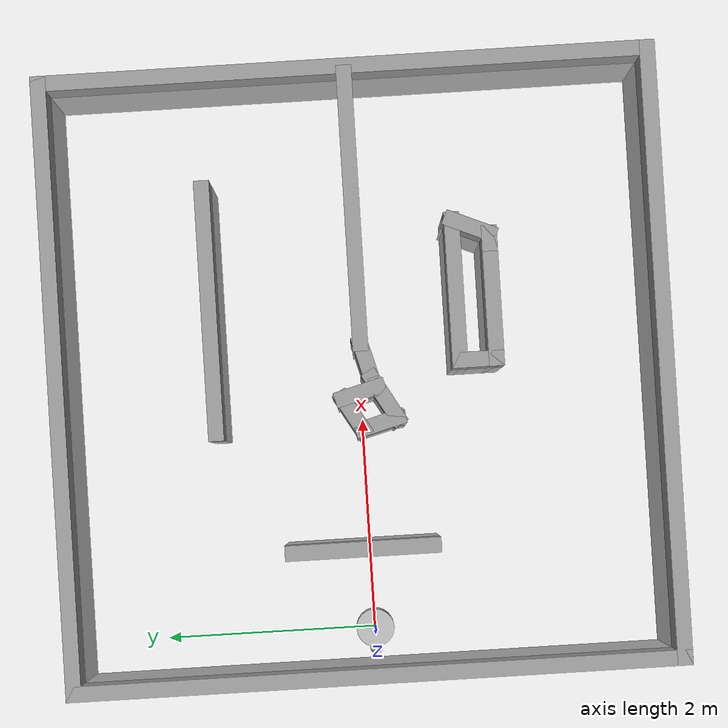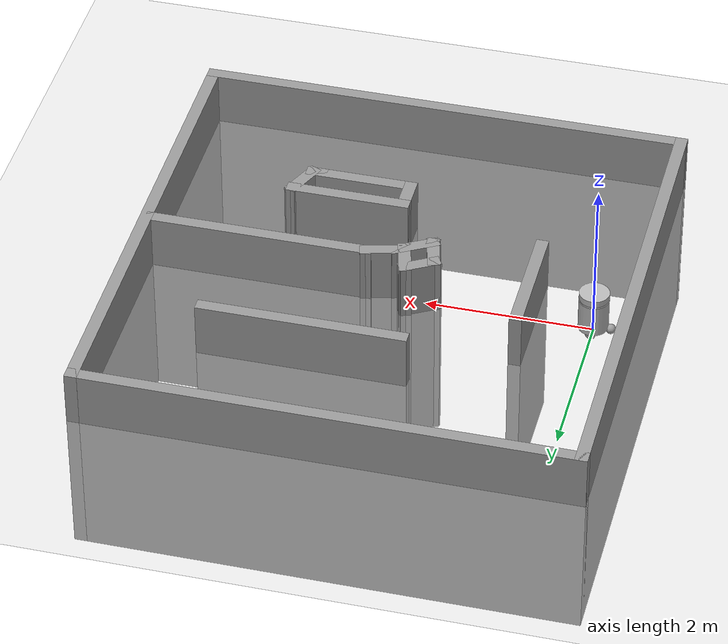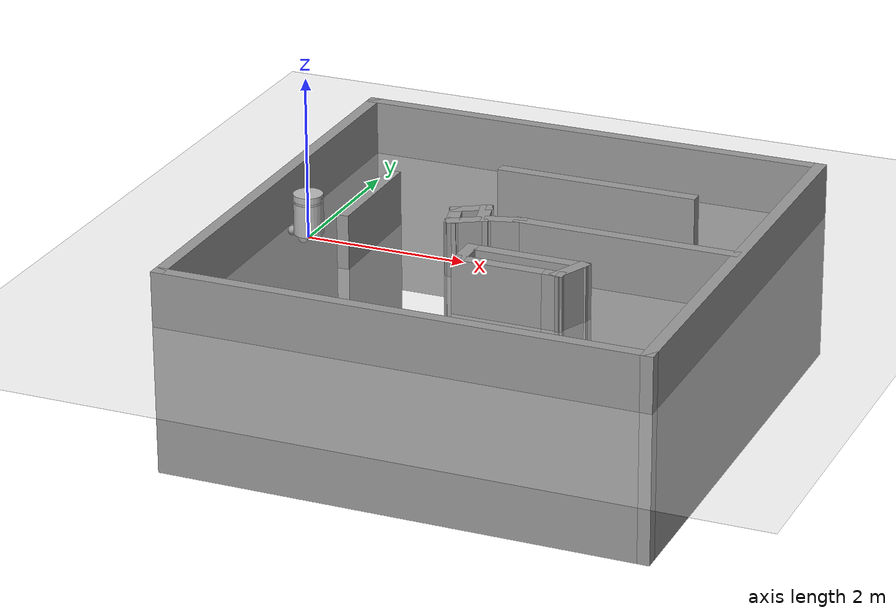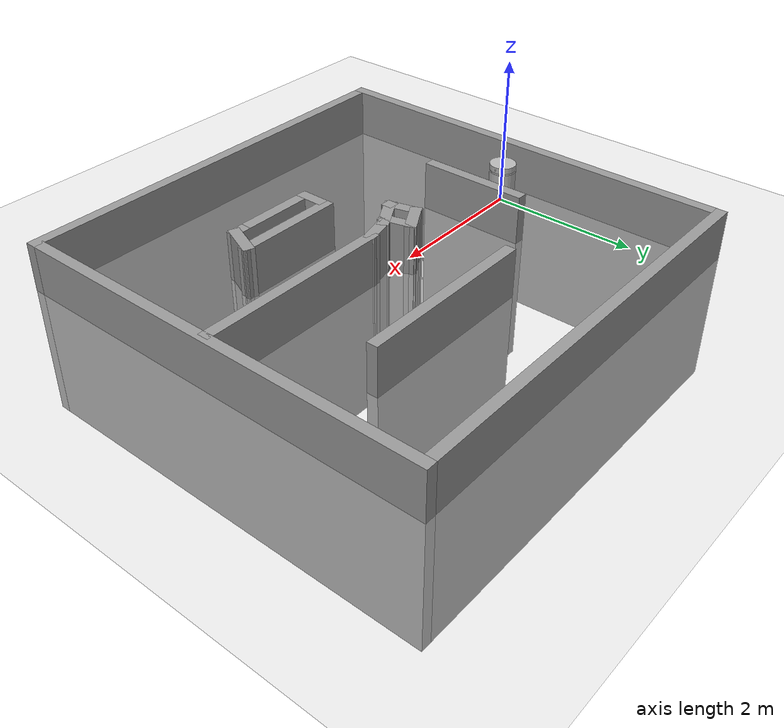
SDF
<sdf version="1.5">
 <world name="default">
  <light name="sun" type="directional">
   <pose>0 0 10 0 -0 0</pose>
   <diffuse>0.8 0.8 0.8 1</diffuse>
   <specular>0.2 0.2 0.2 1</specular>
   <attenuation>
    <range>1000</range>
    <constant>0.9</constant>
    <linear>0.01</linear>
    <quadratic>0.001</quadratic>
   </attenuation>
   <direction>-0.5 0.1 -0.9</direction>
  </light>
  <model name="ground_plane">
   <static>1</static>
   <link name="link">
    <collision name="collision">
     <geometry><plane><normal>0 0 1</normal><size>100 100</size></plane></geometry>
     <surface><friction><ode><mu>100</mu><mu2>50</mu2></ode></friction></surface>
    </collision>
    <visual name="visual">
     <cast_shadows>0</cast_shadows>
     <geometry><plane><normal>0 0 1</normal><size>100 100</size></plane></geometry>
     <material>
      <script><uri>file://media/materials/scripts/gazebo.material</uri><name>Gazebo/Grey</name></script>
     </material>
    </visual>
   </link>
  </model>
  <physics type="ode">
   <max_step_size>0.001</max_step_size>
   <real_time_factor>1</real_time_factor>
   <real_time_update_rate>1000</real_time_update_rate>
   <gravity>0 0 -9.8</gravity>
   <magnetic_field>5.5645e-06 2.28758e-05 -4.23884e-05</magnetic_field>
  </physics>
  <scene><ambient>0.4 0.4 0.4 1</ambient><background>0.7 0.7 0.7 1</background><shadows>1</shadows></scene>
  <spherical_coordinates>
   <surface_model>EARTH_WGS84</surface_model>
   <latitude_deg>0</latitude_deg>
   <longitude_deg>0</longitude_deg>
   <elevation>0</elevation>
   <heading_deg>0</heading_deg>
  </spherical_coordinates>
  <model name="ocare">
   <link name="base_footprint">
    <inertial>
     <pose>3.29846e-05 0 0.401329 0 -0 0</pose>
     <mass>15.2101</mass>
     <inertia>
      <ixx>0.326339</ixx>
      <ixy>0</ixy>
      <ixz>-2.45458e-05</ixz>
      <iyy>0.326364</iyy>
      <iyz>0</iyz>
      <izz>0.247279</izz>
     </inertia>
    </inertial>
    <collision name="base_footprint_collision">
     <pose>0 0 0.26 0 -0 0</pose>
     <geometry><cylinder><length>0.4</length><radius>0.18</radius></cylinder></geometry>
    </collision>
    <collision name="base_footprint_collision_base_footprint_1">
     <pose>0.05 0 0.45 0 -0 0</pose>
     <geometry><box><size>0.01 0.01 0.01</size></box></geometry>
    </collision>
    <collision name="base_footprint_collision_base_footprint_2">
     <pose>0 0 0.525 0 -0 0</pose>
     <geometry><cylinder><length>0.08</length><radius>0.18</radius></cylinder></geometry>
    </collision>
    <collision name="base_footprint_collision_base_footprint_3">
     <pose>0.17 0 0.525 0 -0 0</pose>
     <geometry><box><size>0.02 0.02 0.02</size></box></geometry>
    </collision>
    <collision name="base_footprint_collision_base_footprint_4">
     <pose>0 0 0.4725 0 -0 3.14159</pose>
     <geometry><box><size>0.04 0.04 0.04</size></box></geometry>
    </collision>
    <visual name="base_footprint_visual"><geometry><box><size>0.001 0.001 0.001</size></box></geometry></visual>
    <visual name="base_footprint_visual_base_footprint_1">
     <pose>0 0 0.26 0 -0 0</pose>
     <geometry><cylinder><length>0.4</length><radius>0.18</radius></cylinder></geometry>
    </visual>
    <visual name="base_footprint_visual_base_footprint_2">
     <pose>0.05 0 0.45 0 -0 0</pose>
     <geometry><box><size>0.1 0.1 0.1</size></box></geometry>
    </visual>
    <visual name="base_footprint_visual_base_footprint_3">
     <pose>0 0 0.4725 0 -0 0</pose>
     <geometry><cylinder><length>0.025</length><radius>0.175</radius></cylinder></geometry>
    </visual>
    <visual name="base_footprint_visual_base_footprint_4">
     <pose>0 0 0.525 0 -0 0</pose>
     <geometry><cylinder><length>0.08</length><radius>0.18</radius></cylinder></geometry>
    </visual>
    <visual name="base_footprint_visual_base_footprint_5">
     <pose>0.17 0 0.525 0 -0 0</pose>
     <geometry><box><size>0.02 0.02 0.02</size></box></geometry>
    </visual>
    <visual name="base_footprint_visual_base_footprint_6">
     <pose>0 0 0.4725 0 -0 3.14159</pose>
     <geometry><box><size>0.04 0.04 0.04</size></box></geometry>
    </visual>
    <sensor name="camera1" type="camera">
     <update_rate>30</update_rate>
     <camera name="head">
      <horizontal_fov>1.39626</horizontal_fov>
      <image><width>640</width><height>480</height><format>R8G8B8</format></image>
      <clip><near>0.02</near><far>300</far></clip>
      <noise><type>gaussian</type><mean>0</mean><stddev>0.007</stddev></noise>
     </camera>
     <plugin name="camera_controller" filename="libgazebo_ros_camera.so">
      <alwaysOn>true</alwaysOn>
      <updateRate>0.0</updateRate>
      <cameraName>ocare/camera1</cameraName>
      <imageTopicName>image_raw</imageTopicName>
      <cameraInfoTopicName>camera_info</cameraInfoTopicName>
      <frameName>camera_link</frameName>
      <hackBaseline>0.07</hackBaseline>
      <distortionK1>0.0</distortionK1>
      <distortionK2>0.0</distortionK2>
      <distortionK3>0.0</distortionK3>
      <distortionT1>0.0</distortionT1>
      <distortionT2>0.0</distortionT2>
      <robotNamespace>/</robotNamespace>
     </plugin>
     <pose>0.17 0 0.525 0 -0 0</pose>
    </sensor>
    <sensor name="head_hokuyo_sensor" type="ray">
     <visualize>1</visualize>
     <update_rate>10</update_rate>
     <ray>
      <scan>
       <horizontal>
        <samples>667</samples>
        <resolution>0.352</resolution>
        <min_angle>-2.0944</min_angle>
        <max_angle>2.0944</max_angle>
       </horizontal>
      </scan>
      <range><min>0.2</min><max>5.6</max><resolution>0.03</resolution></range>
      <noise><type>gaussian</type><mean>0</mean><stddev>0.01</stddev></noise>
     </ray>
     <plugin name="gazebo_ros_head_hokuyo_controller" filename="libgazebo_ros_laser.so">
      <topicName>/ocare/laser/scan</topicName>
      <frameName>laser</frameName>
      <robotNamespace>/</robotNamespace>
     </plugin>
     <pose>0 0 0.4725 0 -0 3.14159</pose>
    </sensor>
   </link>
   <link name="base_idler_wheel">
    <pose>-0.21 0 0.06 0 -0 0</pose>
    <inertial>
     <mass>5</mass>
     <inertia>
      <ixx>0.00227083</ixx>
      <ixy>0</ixy>
      <ixz>0</ixz>
      <iyy>0.00227083</iyy>
      <iyz>0</iyz>
      <izz>0.00227083</izz>
     </inertia>
    </inertial>
    <collision name="base_idler_wheel_collision">
     <geometry><sphere><radius>0.06</radius></sphere></geometry>
     <surface>
      <contact><ode><kp>1e+07</kp><kd>1</kd></ode></contact>
      <friction><ode><mu>0</mu><mu2>0</mu2><fdir1>1 0 0</fdir1></ode></friction>
     </surface>
    </collision>
    <visual name="base_idler_wheel_visual">
     <geometry><sphere><radius>0.06</radius></sphere></geometry>
     <material><script><name>Gazebo/Gray</name><uri>__default__</uri></script></material>
    </visual>
   </link>
   <joint name="base_idler_wheel_joint" type="revolute">
    <child>base_idler_wheel</child>
    <parent>base_footprint</parent>
    <axis>
     <xyz>0 1 0</xyz>
     <limit><lower>-1e+16</lower><upper>1e+16</upper></limit>
     <dynamics><spring_reference>0</spring_reference><spring_stiffness>0</spring_stiffness></dynamics>
     <use_parent_model_frame>1</use_parent_model_frame>
    </axis>
   </joint>
   <link name="base_left_wheel">
    <pose>0 0.165 0.06 0 -0 0</pose>
    <inertial>
     <mass>2.5</mass>
     <inertia>
      <ixx>0.00227083</ixx>
      <ixy>0</ixy>
      <ixz>0</ixz>
      <iyy>0.00227083</iyy>
      <iyz>0</iyz>
      <izz>0.0045</izz>
     </inertia>
    </inertial>
    <collision name="base_left_wheel_collision">
     <pose>0 0 0 -1.5708 0 0</pose>
     <geometry><cylinder><length>0.01</length><radius>0.06</radius></cylinder></geometry>
     <surface>
      <contact><ode><kp>1e+07</kp><kd>1</kd></ode></contact>
      <friction><ode><mu>1</mu><mu2>1</mu2><fdir1>1 0 0</fdir1></ode></friction>
     </surface>
    </collision>
    <visual name="base_left_wheel_visual">
     <pose>0 0 0 -1.5708 0 0</pose>
     <geometry><cylinder><length>0.01</length><radius>0.06</radius></cylinder></geometry>
     <material><script><name>Gazebo/Grey</name><uri>__default__</uri></script></material>
    </visual>
   </link>
   <joint name="base_left_wheel_joint" type="revolute">
    <child>base_left_wheel</child>
    <parent>base_footprint</parent>
    <axis>
     <xyz>0 1 0</xyz>
     <limit><lower>-1e+16</lower><upper>1e+16</upper></limit>
     <dynamics><spring_reference>0</spring_reference><spring_stiffness>0</spring_stiffness></dynamics>
     <use_parent_model_frame>1</use_parent_model_frame>
    </axis>
   </joint>
   <link name="base_right_wheel">
    <pose>0 -0.165 0.06 0 -0 0</pose>
    <inertial>
     <mass>2.5</mass>
     <inertia>
      <ixx>0.00227083</ixx>
      <ixy>0</ixy>
      <ixz>0</ixz>
      <iyy>0.00227083</iyy>
      <iyz>0</iyz>
      <izz>0.0045</izz>
     </inertia>
    </inertial>
    <collision name="base_right_wheel_collision">
     <pose>0 0 0 -1.5708 0 0</pose>
     <geometry><cylinder><length>0.01</length><radius>0.06</radius></cylinder></geometry>
     <surface>
      <contact><ode><kp>1e+07</kp><kd>1</kd></ode></contact>
      <friction><ode><mu>1</mu><mu2>1</mu2><fdir1>1 0 0</fdir1></ode></friction>
     </surface>
    </collision>
    <visual name="base_right_wheel_visual">
     <pose>0 0 0 -1.5708 0 0</pose>
     <geometry><cylinder><length>0.01</length><radius>0.06</radius></cylinder></geometry>
     <material><script><name>Gazebo/Grey</name><uri>__default__</uri></script></material>
    </visual>
   </link>
   <joint name="base_right_wheel_joint" type="revolute">
    <child>base_right_wheel</child>
    <parent>base_footprint</parent>
    <axis>
     <xyz>0 1 0</xyz>
     <limit><lower>-1e+16</lower><upper>1e+16</upper></limit>
     <dynamics><spring_reference>0</spring_reference><spring_stiffness>0</spring_stiffness></dynamics>
     <use_parent_model_frame>1</use_parent_model_frame>
    </axis>
   </joint>
   <link name="left_arm_base_link">
    <pose>0 0.05 0.4 -1.5708 0 0</pose>
    <inertial>
     <pose>0 0 0.05 0 -0 0</pose>
     <mass>0.2</mass>
     <inertia>
      <ixx>0.000173333</ixx>
      <ixy>0</ixy>
      <ixz>0</ixz>
      <iyy>0.000208333</iyy>
      <iyz>0</iyz>
      <izz>0.000208333</izz>
     </inertia>
    </inertial>
    <collision name="left_arm_base_link_collision">
     <pose>-0.025 -0.01 0.05 0 -0 0</pose>
     <geometry><box><size>0.05 0.02 0.1</size></box></geometry>
    </collision>
    <visual name="left_arm_base_link_visual">
     <pose>0 0 0.05 0 -0 0</pose>
     <geometry><box><size>0.05 0.02 0.1</size></box></geometry>
     <material><script><name>Gazebo/Yellow</name><uri>__default__</uri></script></material>
     <material><script><name>Gazebo/Grey</name><uri>__default__</uri></script></material>
    </visual>
   </link>
   <joint name="left_arm_base_link_joint" type="prismatic">
    <child>left_arm_base_link</child>
    <parent>base_footprint</parent>
    <axis>
     <xyz>0 1 4.89658e-12</xyz>
     <limit><lower>0</lower><upper>0.15</upper><effort>100</effort><velocity>100</velocity></limit>
     <dynamics><spring_reference>0</spring_reference><spring_stiffness>0</spring_stiffness></dynamics>
     <use_parent_model_frame>1</use_parent_model_frame>
    </axis>
   </joint>
   <link name="left_arm_1_link">
    <pose>0 0.15 0.4 -1.5708 0 0</pose>
    <inertial>
     <pose>0 0.088 0 0 -0 0</pose>
     <mass>0.01</mass>
     <inertia>
      <ixx>2.61467e-05</ixx>
      <ixy>0</ixy>
      <ixz>0</ixz>
      <iyy>2.41667e-06</iyy>
      <iyz>0</iyz>
      <izz>2.41667e-06</izz>
     </inertia>
    </inertial>
    <collision name="left_arm_1_link_collision">
     <pose>0 0.088 0 0 -0 0</pose>
     <geometry><box><size>0.05 0.176 0.02</size></box></geometry>
    </collision>
    <visual name="left_arm_1_link_visual">
     <pose>0 0.088 0 0 -0 0</pose>
     <geometry><box><size>0.05 0.176 0.02</size></box></geometry>
     <material><script><name>Gazebo/Grey</name><uri>__default__</uri></script></material>
    </visual>
   </link>
   <joint name="left_arm_1_link_joint" type="revolute">
    <child>left_arm_1_link</child>
    <parent>left_arm_base_link</parent>
    <axis>
     <xyz>0 1 0</xyz>
     <limit><lower>-3.14159</lower><upper>0</upper><effort>5</effort><velocity>1</velocity></limit>
     <dynamics><spring_reference>0</spring_reference><spring_stiffness>0</spring_stiffness></dynamics>
     <use_parent_model_frame>1</use_parent_model_frame>
    </axis>
   </joint>
   <link name="left_arm_2_link">
    <pose>0 0.15 0.224 2.35619 1.57079 -2.35619</pose>
    <inertial>
     <pose>-0.078 0.069 -0.01 0 -0 0</pose>
     <mass>0.01</mass>
     <inertia>
      <ixx>3.33333e-06</ixx>
      <ixy>0</ixy>
      <ixz>0</ixz>
      <iyy>5.40333e-06</iyy>
      <iyz>0</iyz>
      <izz>5.40333e-06</izz>
     </inertia>
    </inertial>
    <collision name="left_arm_2_link_collision">
     <pose>-0.039 0.03 -0.01 0 -0 0</pose>
     <geometry><box><size>0.078 0.06 0.02</size></box></geometry>
    </collision>
    <visual name="left_arm_2_link_visual">
     <pose>-0.039 0.03 -0.01 0 -0 0</pose>
     <geometry><box><size>0.078 0.06 0.02</size></box></geometry>
     <material><script><name>Gazebo/Grey</name><uri>__default__</uri></script></material>
    </visual>
   </link>
   <joint name="left_arm_2_link_joint" type="revolute">
    <child>left_arm_2_link</child>
    <parent>left_arm_1_link</parent>
    <axis>
     <xyz>-0 1 0</xyz>
     <limit><lower>0</lower><upper>4.71239</upper><effort>5</effort><velocity>1</velocity></limit>
     <dynamics><spring_reference>0</spring_reference><spring_stiffness>0</spring_stiffness></dynamics>
     <use_parent_model_frame>1</use_parent_model_frame>
    </axis>
   </joint>
   <plugin name="imu_plugin" filename="libgazebo_ros_imu.so">
    <alwaysOn>true</alwaysOn>
    <topicName>imu_data</topicName>
    <serviceName>imu_service</serviceName>
    <gaussianNoise>0.0</gaussianNoise>
    <updateRate>60.0</updateRate>
    <robotNamespace>/</robotNamespace>
    <bodyName>base_footprint</bodyName>
    <xyzOffset>-0.05 0 -0.55</xyzOffset>
    <rpyOffset>0 -0 0</rpyOffset>
   </plugin>
   <static>0</static>
   <plugin name="differential_drive_controller" filename="libgazebo_ros_diff_drive.so">
    <alwaysOn>true</alwaysOn>
    <updateRate>50</updateRate>
    <leftJoint>base_left_wheel_joint</leftJoint>
    <rightJoint>base_right_wheel_joint</rightJoint>
    <wheelSeparation>0.33</wheelSeparation>
    <wheelDiameter>0.125</wheelDiameter>
    <torque>20</torque>
    <commandTopic>cmd_vel</commandTopic>
    <odometryTopic>odom_</odometryTopic>
    <odometryFrame>odom_</odometryFrame>
    <robotBaseFrame>base_footprint</robotBaseFrame>
    <publishWheelTF>false</publishWheelTF>
    <publishWheelJointState>false</publishWheelJointState>
    <robotNamespace>ocare</robotNamespace>
   </plugin>
   <plugin name="gazebo_ros_control" filename="libgazebo_ros_control.so">
    <robotNamespace>/ocare</robotNamespace>
   </plugin>
  </model>
  <model name="Untitled">
   <pose>2.46731 -0.00851 -1.83634 0 0 -1.5708</pose>
   <link name="Wall_0">
    <collision name="Wall_0_Collision">
     <geometry><box><size>6 0.15 2.5</size></box></geometry>
     <pose>0 0 1.25 0 -0 0</pose>
    </collision>
    <visual name="Wall_0_Visual">
     <pose>0 0 1.25 0 -0 0</pose>
     <geometry><box><size>6 0.15 2.5</size></box></geometry>
     <material>
      <script><uri>file://media/materials/scripts/gazebo.material</uri><name>Gazebo/Grey</name></script>
      <ambient>1 1 1 1</ambient>
     </material>
    </visual>
    <pose>0 -2.925 0 0 -0 0</pose>
   </link>
   <link name="Wall_1">
    <collision name="Wall_1_Collision">
     <geometry><box><size>6 0.15 2.5</size></box></geometry>
     <pose>0 0 1.25 0 -0 0</pose>
    </collision>
    <visual name="Wall_1_Visual">
     <pose>0 0 1.25 0 -0 0</pose>
     <geometry><box><size>6 0.15 2.5</size></box></geometry>
     <material>
      <script><uri>file://media/materials/scripts/gazebo.material</uri><name>Gazebo/Grey</name></script>
      <ambient>1 1 1 1</ambient>
     </material>
    </visual>
    <pose>2.925 -0 0 0 -0 1.5708</pose>
   </link>
   <link name="Wall_10">
    <collision name="Wall_10_Collision">
     <geometry><box><size>0.25 0.15 2.5</size></box></geometry>
     <pose>0 0 1.25 0 -0 0</pose>
    </collision>
    <visual name="Wall_10_Visual">
     <pose>0 0 1.25 0 -0 0</pose>
     <geometry><box><size>0.25 0.15 2.5</size></box></geometry>
     <material>
      <script><uri>file://media/materials/scripts/gazebo.material</uri><name>Gazebo/Grey</name></script>
      <ambient>1 1 1 1</ambient>
     </material>
    </visual>
    <pose>1.3042 1.18909 0 0 -0 1.5708</pose>
   </link>
   <link name="Wall_11">
    <collision name="Wall_11_Collision">
     <geometry><box><size>0.530789 0.15 2.5</size></box></geometry>
     <pose>0 0 1.25 0 -0 0</pose>
    </collision>
    <visual name="Wall_11_Visual">
     <pose>0 0 1.25 0 -0 0</pose>
     <geometry><box><size>0.530789 0.15 2.5</size></box></geometry>
     <material>
      <script><uri>file://media/materials/scripts/gazebo.material</uri><name>Gazebo/Grey</name></script>
      <ambient>1 1 1 1</ambient>
     </material>
    </visual>
    <pose>1.1292 1.31409 0 0 -0 2.7367</pose>
   </link>
   <link name="Wall_13">
    <collision name="Wall_13_Collision">
     <geometry><box><size>2.75 0.15 2.5</size></box></geometry>
     <pose>0 0 1.25 0 -0 0</pose>
    </collision>
    <visual name="Wall_13_Visual">
     <pose>0 0 1.25 0 -0 0</pose>
     <geometry><box><size>2.75 0.15 2.5</size></box></geometry>
     <material>
      <script><uri>file://media/materials/scripts/gazebo.material</uri><name>Gazebo/Grey</name></script>
      <ambient>1 1 1 1</ambient>
     </material>
    </visual>
    <pose>0.00886 1.55738 0 0 0 -1.5708</pose>
   </link>
   <link name="Wall_14">
    <collision name="Wall_14_Collision">
     <geometry><box><size>0.5 0.15 2.5</size></box></geometry>
     <pose>0 0 1.25 0 -0 0</pose>
    </collision>
    <visual name="Wall_14_Visual">
     <pose>0 0 1.25 0 -0 0</pose>
     <geometry><box><size>0.5 0.15 2.5</size></box></geometry>
     <material>
      <script><uri>file://media/materials/scripts/gazebo.material</uri><name>Gazebo/Grey</name></script>
      <ambient>1 1 1 1</ambient>
     </material>
    </visual>
    <pose>0.054153 0.088344 0 0 0 -1.309</pose>
   </link>
   <link name="Wall_15">
    <collision name="Wall_15_Collision">
     <geometry><box><size>0.25 0.15 2.5</size></box></geometry>
     <pose>0 0 1.25 0 -0 0</pose>
    </collision>
    <visual name="Wall_15_Visual">
     <pose>0 0 1.25 0 -0 0</pose>
     <geometry><box><size>0.25 0.15 2.5</size></box></geometry>
     <material>
      <script><uri>file://media/materials/scripts/gazebo.material</uri><name>Gazebo/Grey</name></script>
      <ambient>1 1 1 1</ambient>
     </material>
    </visual>
    <pose>0.124446 -0.123995 0 0 0 -1.0472</pose>
   </link>
   <link name="Wall_16">
    <collision name="Wall_16_Collision">
     <geometry><box><size>0.5 0.15 2.5</size></box></geometry>
     <pose>0 0 1.25 0 -0 0</pose>
    </collision>
    <visual name="Wall_16_Visual">
     <pose>0 0 1.25 0 -0 0</pose>
     <geometry><box><size>0.5 0.15 2.5</size></box></geometry>
     <material>
      <script><uri>file://media/materials/scripts/gazebo.material</uri><name>Gazebo/Grey</name></script>
      <ambient>1 1 1 1</ambient>
     </material>
    </visual>
    <pose>0.236946 -0.318851 0 0 0 -1.0472</pose>
   </link>
   <link name="Wall_17">
    <collision name="Wall_17_Collision">
     <geometry><box><size>0.15 0.15 2.5</size></box></geometry>
     <pose>0 0 1.25 0 -0 0</pose>
    </collision>
    <visual name="Wall_17_Visual">
     <pose>0 0 1.25 0 -0 0</pose>
     <geometry><box><size>0.15 0.15 2.5</size></box></geometry>
     <material>
      <script><uri>file://media/materials/scripts/gazebo.material</uri><name>Gazebo/Grey</name></script>
      <ambient>1 1 1 1</ambient>
     </material>
    </visual>
    <pose>0.324446 -0.470405 0 0 -0 0</pose>
   </link>
   <link name="Wall_18">
    <collision name="Wall_18_Collision">
     <geometry><box><size>0.5 0.15 2.5</size></box></geometry>
     <pose>0 0 1.25 0 -0 0</pose>
    </collision>
    <visual name="Wall_18_Visual">
     <pose>0 0 1.25 0 -0 0</pose>
     <geometry><box><size>0.5 0.15 2.5</size></box></geometry>
     <material>
      <script><uri>file://media/materials/scripts/gazebo.material</uri><name>Gazebo/Grey</name></script>
      <ambient>1 1 1 1</ambient>
     </material>
    </visual>
    <pose>0.155409 -0.515698 0 0 0 -2.87979</pose>
   </link>
   <link name="Wall_19">
    <collision name="Wall_19_Collision">
     <geometry><box><size>0.5 0.15 2.5</size></box></geometry>
     <pose>0 0 1.25 0 -0 0</pose>
    </collision>
    <visual name="Wall_19_Visual">
     <pose>0 0 1.25 0 -0 0</pose>
     <geometry><box><size>0.5 0.15 2.5</size></box></geometry>
     <material>
      <script><uri>file://media/materials/scripts/gazebo.material</uri><name>Gazebo/Grey</name></script>
      <ambient>1 1 1 1</ambient>
     </material>
    </visual>
    <pose>-0.101128 -0.409437 0 0 -0 2.0944</pose>
   </link>
   <link name="Wall_2">
    <collision name="Wall_2_Collision">
     <geometry><box><size>6 0.15 2.5</size></box></geometry>
     <pose>0 0 1.25 0 -0 0</pose>
    </collision>
    <visual name="Wall_2_Visual">
     <pose>0 0 1.25 0 -0 0</pose>
     <geometry><box><size>6 0.15 2.5</size></box></geometry>
     <material>
      <script><uri>file://media/materials/scripts/gazebo.material</uri><name>Gazebo/Grey</name></script>
      <ambient>1 1 1 1</ambient>
     </material>
    </visual>
    <pose>0 2.925 0 0 -0 3.14159</pose>
   </link>
   <link name="Wall_20">
    <collision name="Wall_20_Collision">
     <geometry><box><size>0.5 0.15 2.5</size></box></geometry>
     <pose>0 0 1.25 0 -0 0</pose>
    </collision>
    <visual name="Wall_20_Visual">
     <pose>0 0 1.25 0 -0 0</pose>
     <geometry><box><size>0.5 0.15 2.5</size></box></geometry>
     <material>
      <script><uri>file://media/materials/scripts/gazebo.material</uri><name>Gazebo/Grey</name></script>
      <ambient>1 1 1 1</ambient>
     </material>
    </visual>
    <pose>-0.019591 -0.212589 0 0 -0 0.261799</pose>
   </link>
   <link name="Wall_22">
    <collision name="Wall_22_Collision">
     <geometry><box><size>2.5 0.15 2.5</size></box></geometry>
     <pose>0 0 1.25 0 -0 0</pose>
    </collision>
    <visual name="Wall_22_Visual">
     <pose>0 0 1.25 0 -0 0</pose>
     <geometry><box><size>2.5 0.15 2.5</size></box></geometry>
     <material>
      <script><uri>file://media/materials/scripts/gazebo.material</uri><name>Gazebo/Grey</name></script>
      <ambient>1 1 1 1</ambient>
     </material>
    </visual>
    <pose>-1.4192 0.656588 0 0 0 -1.5708</pose>
   </link>
   <link name="Wall_3">
    <collision name="Wall_3_Collision">
     <geometry><box><size>6 0.15 2.5</size></box></geometry>
     <pose>0 0 1.25 0 -0 0</pose>
    </collision>
    <visual name="Wall_3_Visual">
     <pose>0 0 1.25 0 -0 0</pose>
     <geometry><box><size>6 0.15 2.5</size></box></geometry>
     <material>
      <script><uri>file://media/materials/scripts/gazebo.material</uri><name>Gazebo/Grey</name></script>
      <ambient>1 1 1 1</ambient>
     </material>
    </visual>
    <pose>-2.925 -0 0 0 0 -1.5708</pose>
   </link>
   <link name="Wall_5">
    <collision name="Wall_5_Collision">
     <geometry><box><size>1.5 0.15 2.5</size></box></geometry>
     <pose>0 0 1.25 0 -0 0</pose>
    </collision>
    <visual name="Wall_5_Visual">
     <pose>0 0 1.25 0 -0 0</pose>
     <geometry><box><size>1.5 0.15 2.5</size></box></geometry>
     <material>
      <script><uri>file://media/materials/scripts/gazebo.material</uri><name>Gazebo/Grey</name></script>
      <ambient>1 1 1 1</ambient>
     </material>
    </visual>
    <pose>-0.080456 -1.7084 0 0 -0 0</pose>
   </link>
   <link name="Wall_7">
    <collision name="Wall_7_Collision">
     <geometry><box><size>1.5 0.15 2.5</size></box></geometry>
     <pose>0 0 1.25 0 -0 0</pose>
    </collision>
    <visual name="Wall_7_Visual">
     <pose>0 0 1.25 0 -0 0</pose>
     <geometry><box><size>1.5 0.15 2.5</size></box></geometry>
     <material>
      <script><uri>file://media/materials/scripts/gazebo.material</uri><name>Gazebo/Grey</name></script>
      <ambient>1 1 1 1</ambient>
     </material>
    </visual>
    <pose>0.954198 0.71409 0 0 0 -1.5708</pose>
   </link>
   <link name="Wall_8">
    <collision name="Wall_8_Collision">
     <geometry><box><size>0.5 0.15 2.5</size></box></geometry>
     <pose>0 0 1.25 0 -0 0</pose>
    </collision>
    <visual name="Wall_8_Visual">
     <pose>0 0 1.25 0 -0 0</pose>
     <geometry><box><size>0.5 0.15 2.5</size></box></geometry>
     <material>
      <script><uri>file://media/materials/scripts/gazebo.material</uri><name>Gazebo/Grey</name></script>
      <ambient>1 1 1 1</ambient>
     </material>
    </visual>
    <pose>1.1292 0.03909 0 0 -0 0</pose>
   </link>
   <link name="Wall_9">
    <collision name="Wall_9_Collision">
     <geometry><box><size>1.25 0.15 2.5</size></box></geometry>
     <pose>0 0 1.25 0 -0 0</pose>
    </collision>
    <visual name="Wall_9_Visual">
     <pose>0 0 1.25 0 -0 0</pose>
     <geometry><box><size>1.25 0.15 2.5</size></box></geometry>
     <material>
      <script><uri>file://media/materials/scripts/gazebo.material</uri><name>Gazebo/Grey</name></script>
      <ambient>1 1 1 1</ambient>
     </material>
    </visual>
    <pose>1.3042 0.58909 0 0 -0 1.5708</pose>
   </link>
   <static>1</static>
  </model>
 </world>
</sdf>
